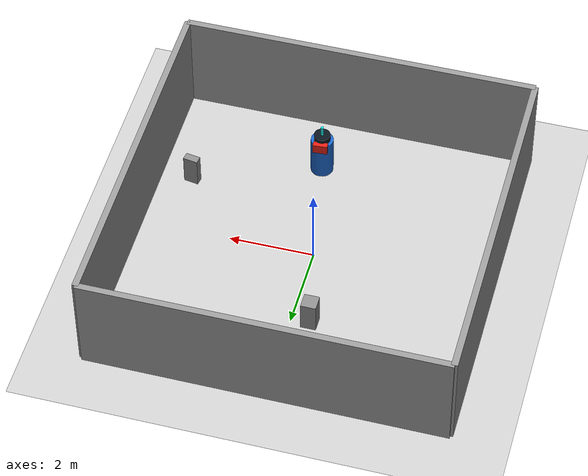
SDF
<sdf version="1.7">
 <world name="default">
  <plugin name="socnav_plugin" filename="libSocNavPlugin.so">
   <robot_name>robot</robot_name>
   <trajectory_file>/home/hunav_gz_classic_ws/SocNav3_trajectories/src6/000003899.json</trajectory_file>
   <human_slots>3</human_slots>
   <goal_angle_mesh>
    <angle_threshold>3.00875593057</angle_threshold>
    <uri>/home/hunav_gz_classic_ws/src/socnav_gazebo_reproducer/meshes/000003899_goal_angle_00.stl</uri>
   </goal_angle_mesh>
  </plugin>
  <light name="sun" type="directional">
   <pose>0 0 10 0 -0 0</pose>
   <diffuse>0.8 0.8 0.8 1</diffuse>
   <specular>0.2 0.2 0.2 1</specular>
   <attenuation>
    <range>1000</range>
    <constant>0.9</constant>
    <linear>0.01</linear>
    <quadratic>0.001</quadratic>
   </attenuation>
   <direction>-0.5 0.1 -0.9</direction>
   <spot><inner_angle>0</inner_angle><outer_angle>0</outer_angle><falloff>0</falloff></spot>
  </light>
  <model name="ground_plane">
   <static>1</static>
   <link name="link">
    <collision name="collision">
     <geometry><plane><normal>0 0 1</normal><size>100 100</size></plane></geometry>
     <surface><friction><ode><mu>100</mu><mu2>50</mu2></ode></friction></surface>
    </collision>
    <visual name="visual">
     <cast_shadows>0</cast_shadows>
     <geometry><plane><normal>0 0 1</normal><size>100 100</size></plane></geometry>
     <material>
      <script><uri>file://media/materials/scripts/kitchen.material</uri><name>Kitchen/CounterTop_H</name></script>
     </material>
    </visual>
   </link>
  </model>
  <gravity>0 0 -9.8</gravity>
  <magnetic_field>6e-06 2.3e-05 -4.2e-05</magnetic_field>
  <atmosphere type="adiabatic"/>
  <physics type="ode">
   <max_step_size>0.001</max_step_size>
   <real_time_factor>1</real_time_factor>
   <real_time_update_rate>1000</real_time_update_rate>
  </physics>
  <scene><ambient>0.4 0.4 0.4 1</ambient><background>0.7 0.7 0.7 1</background><shadows>1</shadows></scene>
  <audio><device>default</device></audio>
  <spherical_coordinates>
   <surface_model>EARTH_WGS84</surface_model>
   <latitude_deg>0</latitude_deg>
   <longitude_deg>0</longitude_deg>
   <elevation>0</elevation>
   <heading_deg>0</heading_deg>
  </spherical_coordinates>
  <model name="robot">
   <pose>0.5002751787137061 -2.6872313665665204 0.5 0 0 1.6382616733043005</pose>
   <link name="link">
    <collision name="collision">
     <geometry><cylinder><radius>0.26803962210819376</radius><length>1.0</length></cylinder></geometry>
    </collision>
    <visual name="visual">
     <geometry><cylinder><radius>0.26803962210819376</radius><length>1.0</length></cylinder></geometry>
     <material><ambient>0.1 0.4 0.8 1</ambient><diffuse>0.1 0.4 0.8 1</diffuse></material>
    </visual>
    <visual name="robot_top">
     <pose>0 0 0.58 0 0 0</pose>
     <geometry><cylinder><radius>0.1929885279178995</radius><length>0.16</length></cylinder></geometry>
     <material><ambient>0.04 0.08 0.12 1</ambient><diffuse>0.04 0.08 0.12 1</diffuse></material>
    </visual>
    <visual name="robot_front">
     <pose>0.22515328257088274 0 0.44 0 0 0</pose>
     <geometry><box><size>0.128659018611933 0.34309071629848803 0.24</size></box></geometry>
     <material><ambient>0.9 0.12 0.08 1</ambient><diffuse>0.9 0.12 0.08 1</diffuse></material>
    </visual>
    <visual name="robot_sensor">
     <pose>0 0 0.78 0 0 0</pose>
     <geometry><cylinder><radius>0.03752554709514713</radius><length>0.24</length></cylinder></geometry>
     <material><ambient>0.1 0.9 0.9 1</ambient><diffuse>0.1 0.9 0.9 1</diffuse></material>
    </visual>
   </link>
  </model>
  <model name="static_object_0">
   <static>true</static>
   <pose>3.3620312698367174 -1.5469204636875773 0.375 0 0 2.9794260329962174</pose>
   <link name="link">
    <collision name="collision"><geometry><box><size>0.35 0.18 0.75</size></box></geometry></collision>
    <visual name="visual">
     <geometry><box><size>0.35 0.18 0.75</size></box></geometry>
     <material><ambient>0.55 0.55 0.55 1</ambient><diffuse>0.55 0.55 0.55 1</diffuse></material>
    </visual>
   </link>
  </model>
  <model name="static_object_2">
   <static>true</static>
   <pose>-0.4429775361597277 1.9300384777698154 0.375 0 0 0</pose>
   <link name="link">
    <collision name="collision">
     <geometry><box><size>0.3542642806628596 0.3542642806628596 0.75</size></box></geometry>
    </collision>
    <visual name="visual">
     <geometry><box><size>0.3542642806628596 0.3542642806628596 0.75</size></box></geometry>
     <material><ambient>0.55 0.55 0.55 1</ambient><diffuse>0.55 0.55 0.55 1</diffuse></material>
    </visual>
   </link>
  </model>
  <model name="simple_world_test">
   <link name="Wall_0">
    <collision name="Wall_0_Collision">
     <geometry><box><size>8.382034314738386 0.15 2.5</size></box></geometry>
     <pose>0 0 1.25 0 -0 0</pose>
    </collision>
    <visual name="Wall_0_Visual">
     <pose>0 0 1.25 0 -0 0</pose>
     <geometry><box><size>8.382034314738386 0.15 2.5</size></box></geometry>
     <material>
      <script><uri>file://media/materials/scripts/gazebo.material</uri><name>Gazebo/Grey</name></script>
      <ambient>1 1 1 1</ambient>
     </material>
     <meta><layer>0</layer></meta>
    </visual>
    <pose>4.181017157369193 0.0 0 0 -0 -1.5707963267948966</pose>
   </link>
   <link name="Wall_1">
    <collision name="Wall_1_Collision">
     <geometry><box><size>8.382034314738386 0.15 2.5</size></box></geometry>
     <pose>0 0 1.25 0 -0 0</pose>
    </collision>
    <visual name="Wall_1_Visual">
     <pose>0 0 1.25 0 -0 0</pose>
     <geometry><box><size>8.382034314738386 0.15 2.5</size></box></geometry>
     <material>
      <script><uri>file://media/materials/scripts/gazebo.material</uri><name>Gazebo/Grey</name></script>
      <ambient>1 1 1 1</ambient>
     </material>
     <meta><layer>0</layer></meta>
    </visual>
    <pose>0.0 -4.181017157369193 0 0 -0 -3.141592653589793</pose>
   </link>
   <link name="Wall_2">
    <collision name="Wall_2_Collision">
     <geometry><box><size>8.382034314738386 0.15 2.5</size></box></geometry>
     <pose>0 0 1.25 0 -0 0</pose>
    </collision>
    <visual name="Wall_2_Visual">
     <pose>0 0 1.25 0 -0 0</pose>
     <geometry><box><size>8.382034314738386 0.15 2.5</size></box></geometry>
     <material>
      <script><uri>file://media/materials/scripts/gazebo.material</uri><name>Gazebo/Grey</name></script>
      <ambient>1 1 1 1</ambient>
     </material>
     <meta><layer>0</layer></meta>
    </visual>
    <pose>-4.181017157369193 0.0 0 0 -0 1.5707963267948966</pose>
   </link>
   <link name="Wall_3">
    <collision name="Wall_3_Collision">
     <geometry><box><size>8.382034314738386 0.15 2.5</size></box></geometry>
     <pose>0 0 1.25 0 -0 0</pose>
    </collision>
    <visual name="Wall_3_Visual">
     <pose>0 0 1.25 0 -0 0</pose>
     <geometry><box><size>8.382034314738386 0.15 2.5</size></box></geometry>
     <material>
      <script><uri>file://media/materials/scripts/gazebo.material</uri><name>Gazebo/Grey</name></script>
      <ambient>1 1 1 1</ambient>
     </material>
     <meta><layer>0</layer></meta>
    </visual>
    <pose>0.0 4.181017157369193 0 0 -0 0.0</pose>
   </link>
   <static>1</static>
  </model>
 </world>
</sdf>
